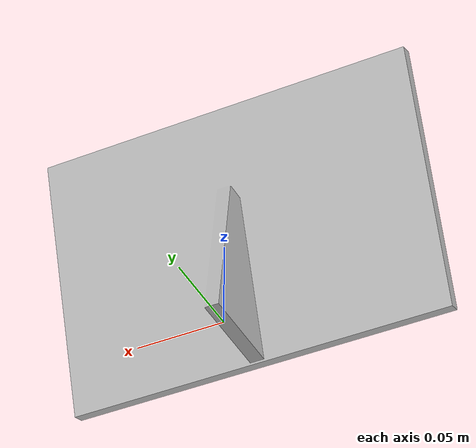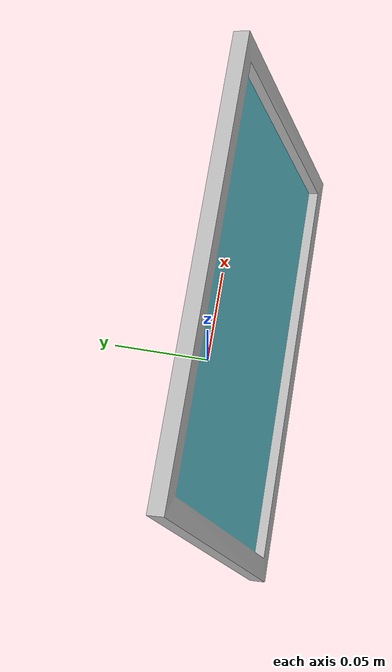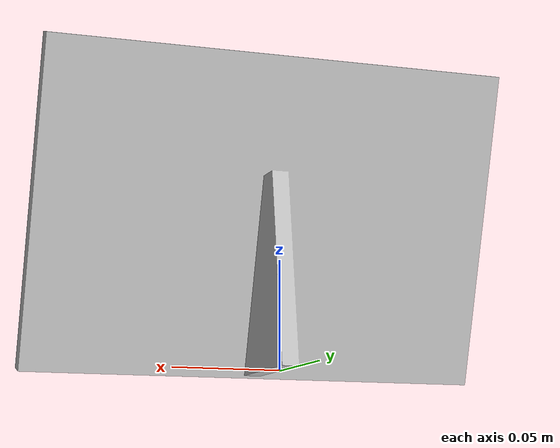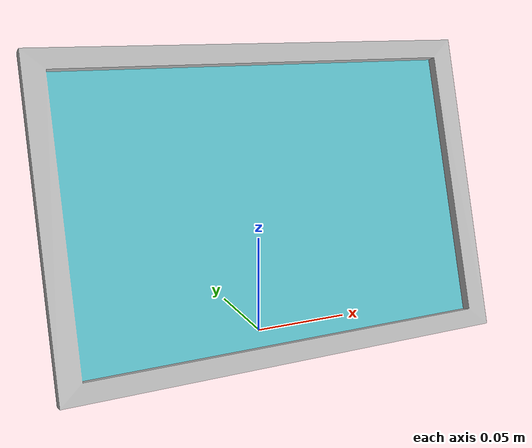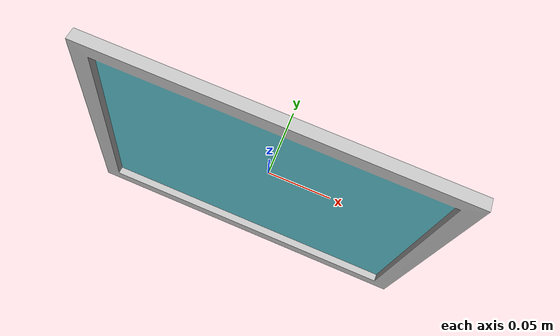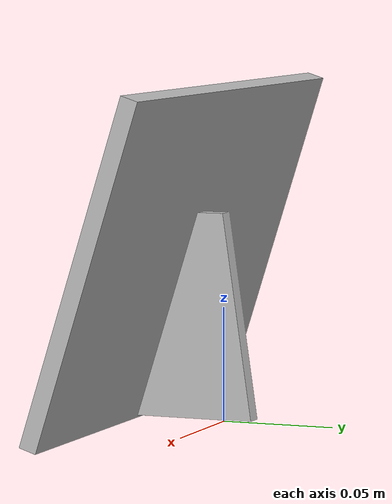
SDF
<?xml version='1.0'?>
<sdf version="1.4">
	<model name="photo_frame">
		<static>1</static>
		<link name="link">
			<visual name="mesh">
				<geometry>
					<mesh>
						<uri>model://meshes/photo_frame.dae</uri>
					</mesh>
				</geometry>
			</visual>
			<collision name="box">
				<pose>0 0 0.0735 0 0 0</pose>
				<geometry>
					<box>
						<size>0.221 0.061 0.147</size>
					</box>
				</geometry>
			</collision>
		</link>
	</model>
</sdf>
